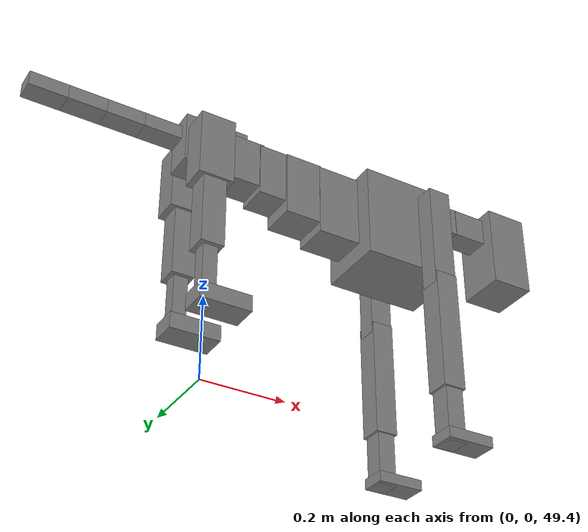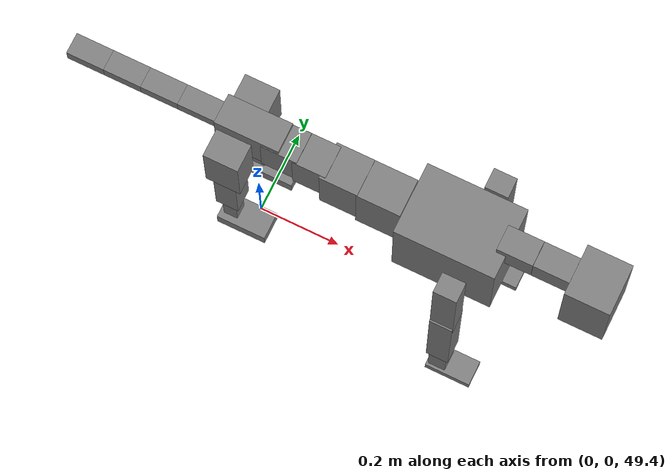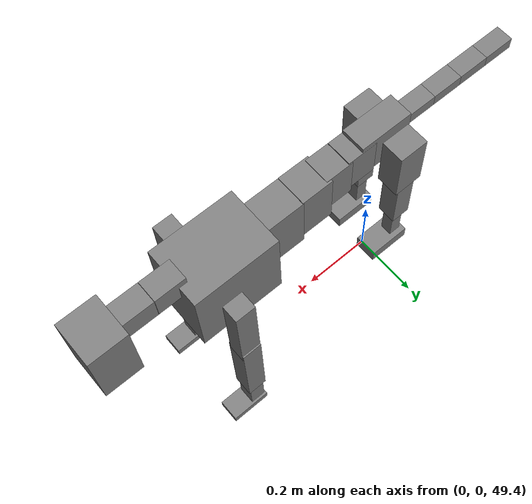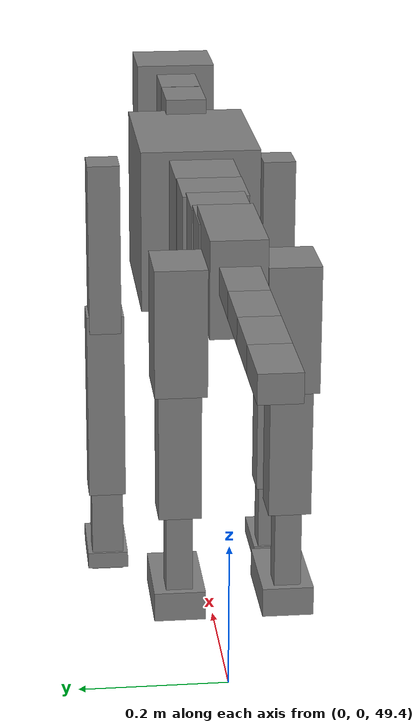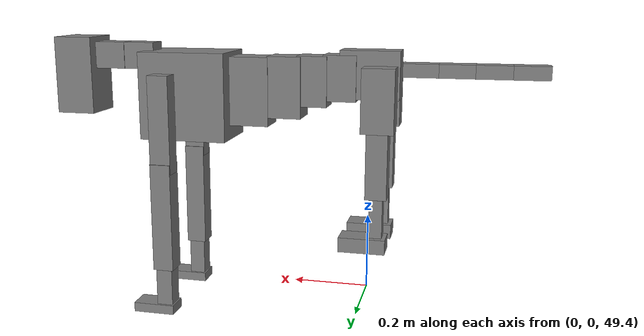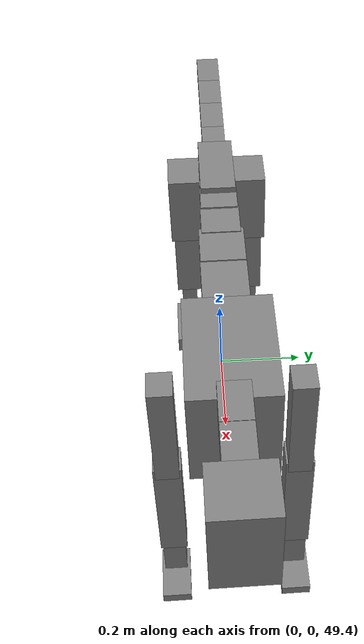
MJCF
<mujoco model="dog">

    <default>
        <joint armature="0.02" stiffness="1" damping="0.2" limited="true"/>
        <geom condim="3" friction="1 0.05 0.05" margin="0.01"/>
        <motor ctrllimited="true" ctrlrange="-1.0 1.0" forcelimited="true" gear="50"/>
    </default>

    <compiler inertiafromgeom="true" angle="radian"/>

    <option timestep="0.016" iterations="50" tolerance="1e-10" solver="Newton" jacobian="dense" cone="pyramidal"/>

    <size nconmax="20000" njmax="60000" nstack="5000000"/>
    <visual>
        <map force="0.1" zfar="30"/>
        <rgba haze="0.15 0.25 0.35 1"/>
        <quality shadowsize="2048"/>
        <global offwidth="800" offheight="800"/>
    </visual>

    <asset>
        <texture type="skybox" builtin="gradient" rgb1="0.3 0.5 0.7" rgb2="0 0 0" width="512" height="512"/>
        <texture name="texplane" type="2d" builtin="checker" rgb1=".2 .3 .4" rgb2=".1 0.15 0.2" width="512" height="512"
                 mark="cross" markrgb=".8 .8 .8"/>
        <texture name="texgeom" type="cube" builtin="flat" mark="cross" width="127" height="1278" rgb1="0.8 0.6 0.4"
                 rgb2="0.8 0.6 0.4" markrgb="1 1 1" random="0.01"/>

        <material name="matplane" reflectance="0.3" texture="texplane" texrepeat="1 1" texuniform="true"/>
        <material name="matgeom" texture="texgeom" texuniform="true" rgba="0.8 0.6 .4 1"/>
    </asset>

    <worldbody>
        <geom name="floor" pos="0 0 0" size="0 0 .25" type="plane" material="matplane" condim="3"/>

        <light directional="false" diffuse=".2 .2 .2" specular="0 0 0" pos="0 0 5" dir="0 0 -1" castshadow="false"/>
        <light mode="targetbodycom" target="torso" directional="false" diffuse=".8 .8 .8" specular="0.3 0.3 0.3"
               pos="0 0 4.0" dir="0 0 -1"/>

        <body name="root" pos="0 0 50">
            <freejoint name="root_1"/>
            <geom type="box" pos="0 0 -0.02" size="0.0774  0.0358  0.063" density="2030"/>

            <body name="spine1" pos="0.054 0 0">
                <joint name="spine1_y" axis="0 1 0" range="0 0.7" limited="true"/>
                <geom type="box" pos="0.02375 0 -0.03" size="0.04375  0.0375  0.05985" density="2030"/>

                <body name="spine2" pos="0.0612 0 0">
                    <joint name="spine2_y" axis="0 1 0" range="-0.15 0.15" limited="true"/>
                    <geom type="box" pos="0.03555  0  -0.04" size="0.04055  0.039  0.06615" density="2030"/>

                    <body name="spine3" pos="0.0730 0 0">
                        <joint name="spine3_y" axis="0 1 0" range="-0.15 0.15" limited="true"/>
                        <geom type="box" pos="0.03555  0  -0.057" size="0.04555  0.0445  0.081" density="2030"/>

                        <body name="spine4" pos="0.0780 0 0">
                            <joint name="spine4_y" axis="0 1 0" range="-0.15 0.15" limited="true"/>
                            <geom type="box" pos="0.05265  0  -0.07" size="0.05265  0.045  0.09135" density="2030"/>

                            <body name="torso" pos="0.1082 0 0">
                                <joint name="torso_y" axis="0 1 0" range="-0.15 0.15" limited="true"/>
                                <geom type="box" pos="0.11925  0  -0.085" size="0.11925  0.085  0.11745"
                                      density="2030"/>

                                <body name="neck1" pos="0.2160  0   0.0180">
                                    <joint name="neck1_y" axis="0 1 0" range="-1.2  -1" limited="true"/>
                                    <geom type="box" pos="0.0423  0  0" size="0.0423  0.03  0.036" density="2325"/>

                                    <body name="neck2" pos="0.0853  0  0">
                                        <joint name="neck2_y" axis="0 1 0" range="0.1  0" limited="true"/>
                                        <geom type="box" pos="0.0423  0  0" size="0.0423  0.03  0.036" density="2325"/>

                                        <body name="head" pos="0.0853  0  0">
                                            <joint name="head_y" axis="0 1 0" range="-0.3  -0.2" limited="true"/>
                                            <geom type="box" pos="0.0531  0  -0.055" size="0.0531  0.06  0.1044"
                                                  density="4030"/>

                                        </body>
                                    </body>
                                </body>

                                <body name="front_shoulder" pos="0.156  0   -0.0480">
                                    <joint name="front_shoulder_y" axis="0 1 0" range="-1 1.5" limited="true"/>
                                    <geom type="box" pos="0 0.13 -0.1034" size="0.0280  0.0240  0.1301" density="1158"/>
                                    <geom type="box" pos="0 -0.13 -0.1034" size="0.0280  0.0240  0.1301"
                                          density="1158"/>

                                    <body name="front_elbow" pos="0  0  -0.2068">
                                        <joint name="front_elbow_y" axis="0 1 0" range="-2 0" limited="true"/>
                                        <geom type="box" pos="0 0.13 -0.1454" size="0.0275  0.0281  0.1454"
                                              density="1081"/>
                                        <geom type="box" pos="0 -0.13 -0.1454" size="0.0275  0.0281  0.1454"
                                              density="1081"/>

                                        <body name="front_wrist" pos="0  0  -0.2907">
                                            <joint name="front_wrist_y" axis="0 1 0" range="-0.2 0" limited="true"/>
                                            <geom type="box" pos="0 0.13 -0.0573" size="0.0216  0.0240  0.0705"
                                                  density="1664"/>
                                            <geom type="box" pos="0 -0.13 -0.0573" size="0.0216  0.0240  0.0705"
                                                  density="1664"/>

                                            <body name="front_finger_end" pos="0  0  -0.1146">
                                                <joint name="front_finger_y" axis="0 1 0" range="-0.4 1"
                                                       limited="true"/>
                                                <geom type="box" pos="0.0308  0.13  0.0023"
                                                      size="0.0564  0.0308  0.0127" density="1515"/>
                                                <geom type="box" pos="0.0308  -0.13  0.0023"
                                                      size="0.0564  0.0308  0.0127" density="1515"/>

                                            </body>

                                        </body>
                                    </body>
                                </body>

                            </body>
                        </body>
                    </body>
                </body>
            </body>

            <body name="back_hip" pos="-0.03 0 -0.018">
                <joint name="back_hip_y" axis="0 1 0" range="-1.5 0.3" limited="true"/>
                <geom type="box" pos="0 0.07 -0.0598" size="0.0420  0.0330  0.0826" density="1154"/>
                <geom type="box" pos="0 -0.07 -0.0598" size="0.0420  0.0330  0.0826" density="1154"/>

                <body name="back_knee" pos="0  0  -0.1197">
                    <joint name="back_knee_y" axis="0 1 0" range="0 2.8" limited="true"/>
                    <geom type="box" pos="0 0.07 -0.0888" size="0.0276  0.0272  0.1043" density="1227"/>
                    <geom type="box" pos="0 -0.07 -0.0888" size="0.0276  0.0272  0.1043" density="1227"/>

                    <body name="back_ankle" pos="0  0  -0.1775">
                        <joint name="back_ankle_y" axis="0 1 0" range="-2.2 0" limited="true"/>
                        <geom type="box" pos="0 0.07 -0.0672" size="0.0172  0.0172  0.0785" density="1284"/>
                        <geom type="box" pos="0 -0.07 -0.0672" size="0.0172  0.0172  0.0785" density="1284"/>

                        <body name="back_toe_end" pos="0  0  -0.1345">
                            <joint name="back_toe_y" axis="0 1 0" range="-0.4 1" limited="true"/>
                            <geom type="box" pos="0.0331  0.07  -0.0044" size="0.0606  0.0331  0.0194" density="1515"/>
                            <geom type="box" pos="0.0331  -0.07  -0.0044" size="0.0606  0.0331  0.0194" density="1515"/>

                        </body>
                    </body>
                </body>
            </body>

            <body name="tail1" pos="-0.074 0 -0.006">
                <joint name="tail1_y" axis="0 1 0" range="-0.2 0.2" limited="true"/>
                <geom type="box" pos="-0.0536  0  0" size="0.045  0.025  0.0175" density="1587"/>

                <body name="tail2" pos="-0.09 0 0">
                    <joint name="tail2_y" axis="0 1 0" range="-0.2 0.2" limited="true"/>
                    <geom type="box" pos="-0.0536  0  0" size="0.045  0.025  0.0175" density="1587"/>

                    <body name="tail3" pos="-0.09 0 0">
                        <joint name="tail3_y" axis="0 1 0" range="-0.2 0.2" limited="true"/>
                        <geom type="box" pos="-0.0536  0  0" size="0.045  0.025  0.0175" density="1587"/>

                        <body name="tail4" pos="-0.09 0 0">
                            <joint name="tail4_y" axis="0 1 0" range="-0.2 0.2" limited="true"/>
                            <geom type="box" pos="-0.0536  0  0" size="0.045  0.025  0.0175" density="1587"/>

                        </body>
                    </body>
                </body>
            </body>
        </body>
    </worldbody>

    <actuator>
        <motor joint="spine1_y" forcerange="-150 150     "/>
        <motor joint="spine2_y" forcerange="-150 150     "/>
        <motor joint="spine3_y" forcerange="-150 150     "/>
        <motor joint="spine4_y" forcerange="-150 150     "/>
        <motor joint="torso_y" forcerange="-150 150     "/>
        <motor joint="neck1_y" forcerange="-100 100       "/>
        <motor joint="neck2_y" forcerange="-100 100       "/>
        <motor joint="head_y" forcerange="-150 150       "/>
        <motor joint="front_shoulder_y" forcerange="-137.02 122.77"/>
        <motor joint="front_elbow_y" forcerange="-191.05 113.22"/>
        <motor joint="front_wrist_y" forcerange="-125.99 65.75"/>
        <motor joint="front_finger_y" forcerange="-55.79 68.23"/>
        <motor joint="back_hip_y" forcerange="-374.24 265.18"/>
        <motor joint="back_knee_y" forcerange="-239.91 355.19"/>
        <motor joint="back_angle_y" forcerange="-101.09 74.71"/>
        <motor joint="back_toe_y" forcerange="-136.02 48.45"/>
        <motor joint="tail1_y" forcerange="-50 50     "/>
        <motor joint="tail2_y" forcerange="-50 50     "/>
        <motor joint="tail3_y" forcerange="-50 50     "/>
        <motor joint="tail4_y" forcerange="-50 50     "/>
    </actuator>
</mujoco>
